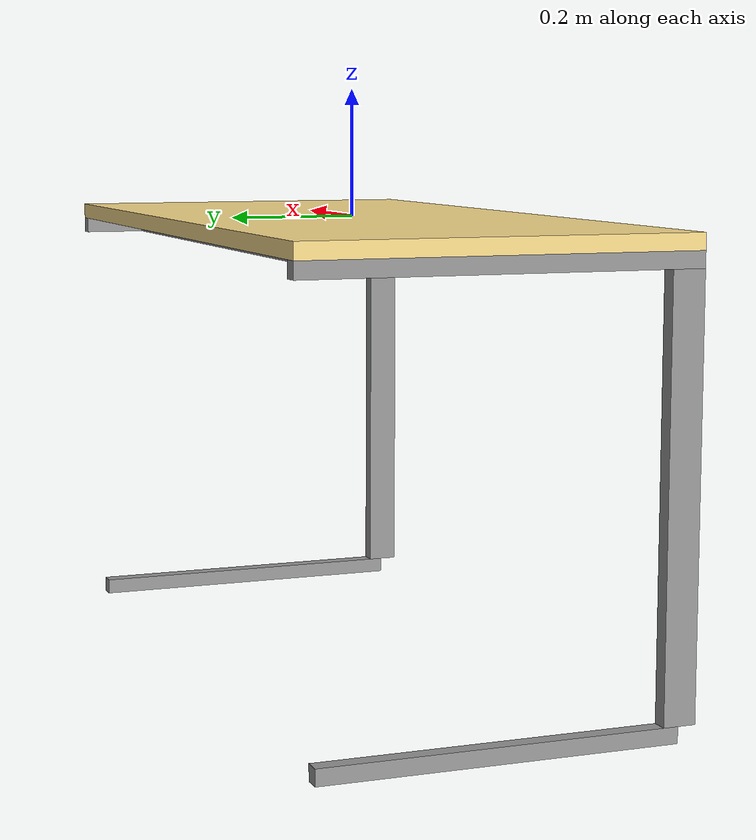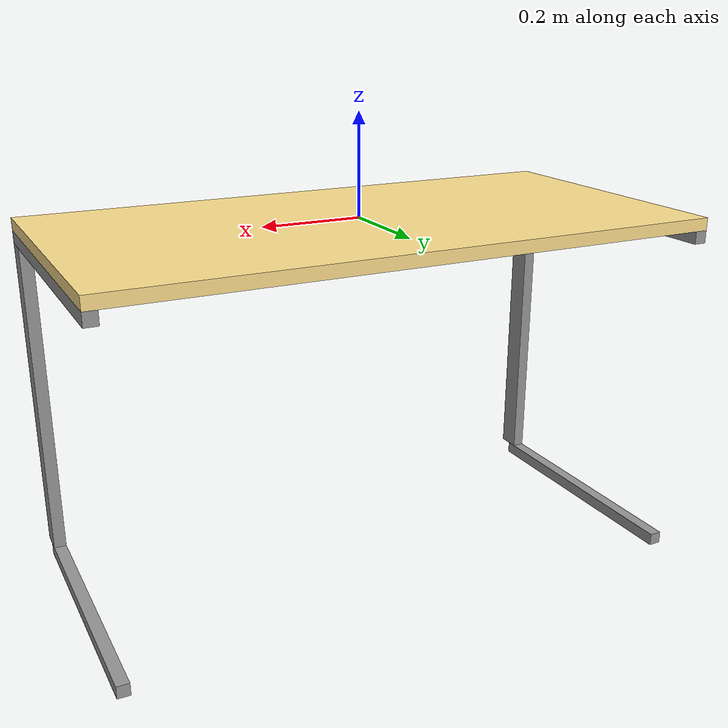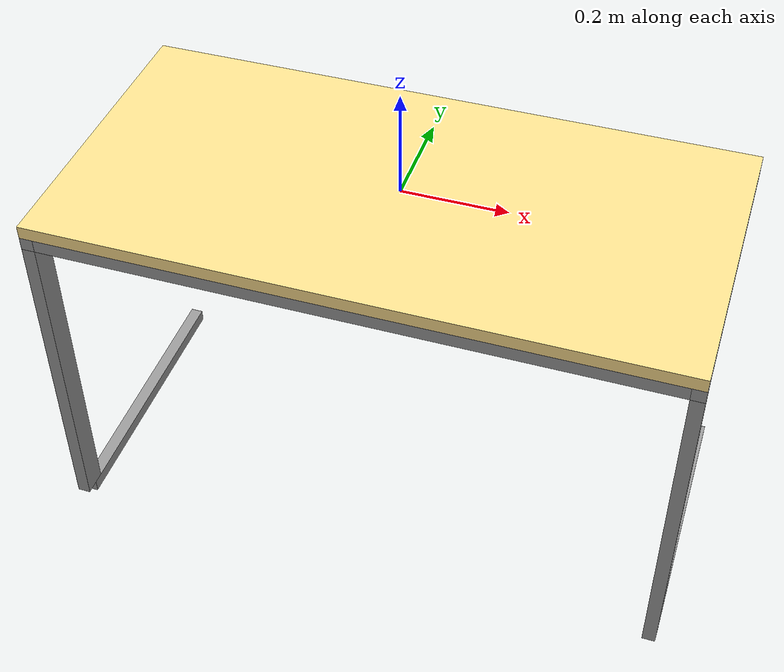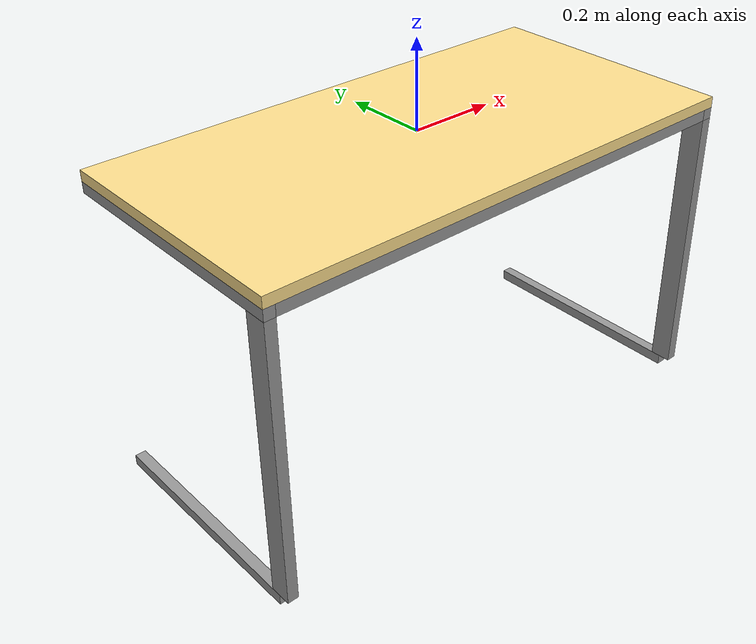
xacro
<?xml version="1.0"?>
<robot name="big_table" xmlns:xacro="http://www.ros.org/wiki/xacro">

<!-- Import all Gazebo-customization elements, including Gazebo colors -->
<xacro:include filename="$(find table_description)/urdf/table.gazebo" />

<!-- Import Rviz colors -->
<xacro:include filename="$(find table_description)/urdf/materials.xacro" />

<xacro:property name="table_top_l"  value="1.2"   />
<xacro:property name="table_top_h"  value="0.6"   />
<xacro:property name="table_top_w"  value="0.025" />

<xacro:property name="table_bot_l"  value="1.15"  />
<xacro:property name="table_bot_h"  value="0.5"   />
<xacro:property name="table_bot_w"  value="0.025" />

<xacro:property name="top_bar_l"  value="0.025"   />
<xacro:property name="top_bar_h"  value="0.6"     />
<xacro:property name="top_bar_w"  value="0.025"   />

<xacro:property name="leg_l"  value="0.025"   />
<xacro:property name="leg_h"  value="0.05"  />
<xacro:property name="leg_w"  value="0.65"   />

<xacro:property name="sup_l"  value="0.025"   />
<xacro:property name="sup_h"  value="0.545"  />
<xacro:property name="sup_w"  value="0.025"   />

<xacro:macro name="box_I" params="m w h d">
    <inertia ixx="${1/12 * m * (d*d  + h * h)}" ixy="0.0" ixz="0.0" iyy="${1/12 * m * (h * h + w * w)}" iyz="0.0" izz="${1/12 * m * (w * w + d * d)}" />
</xacro:macro>

<!-- support -->
<xacro:macro name="sup" params="prefix rx">
	<link name="${prefix}_sup">
      		<visual>
		<origin xyz="0 0 0" rpy="0 0 0"/>
        		<geometry>
	        		<box size="${sup_l} ${sup_h} ${sup_w}"/>
        		</geometry>
 			<material name="Grey"/>
      		</visual>

		<inertial>
			<origin xyz="0 0 0" rpy="0 0 0"/>
			<mass value="1"/>
			<xacro:box_I m="0.25" w="${sup_l}" h="${sup_h}" d="${sup_w}"/>
		</inertial>

		<collision>
			<origin xyz="0 0 0" rpy="0 0 0"/>
			<geometry>
				<box size="${sup_l} ${sup_h} ${sup_w}"/>
			</geometry>
  		</collision>

	</link>
	<joint name="link_${prefix}_sup" type="fixed">
		<origin xyz="${rx*0.5*table_top_l -rx*0.5*top_bar_l} 0 ${-table_top_w-table_bot_w-leg_w-0.5*sup_w}" rpy="0 0 0"/>
		<parent link="table_top"/>
		<child link="${prefix}_sup"/>
	 </joint>
</xacro:macro>

<!-- lefg -->
<xacro:macro name="leg" params="prefix rx">
	<link name="${prefix}_leg">
      		<visual>
		<origin xyz="0 0 0" rpy="0 0 0"/>
        		<geometry>
	        		<box size="${leg_l} ${leg_h} ${leg_w}"/>
        		</geometry>
 			<material name="Grey"/>
      		</visual>

		<inertial>
			<origin xyz="0 0 0" rpy="0 0 0"/>
			<mass value="1"/>
			<xacro:box_I m="0.25" w="${leg_l}" h="${leg_h}" d="${leg_w}"/>
		</inertial>

		<collision>
			<origin xyz="0 0 0" rpy="0 0 0"/>
			<geometry>
				<box size="${leg_l} ${leg_h} ${leg_w}"/>
			</geometry>
  		</collision>

	</link>
	<joint name="link_${prefix}_leg" type="fixed">
		<origin xyz="${rx*0.5*table_top_l -rx*0.5*leg_l} ${-0.5*table_top_h + 0.5* leg_h} ${-0.5*leg_w-table_top_w-table_bot_w}" rpy="0 0 0"/>
		<parent link="table_top"/>
		<child link="${prefix}_leg"/>
	 </joint>
</xacro:macro>

<!-- top bar -->
<xacro:macro name="top_bar" params="prefix rx">
	<link name="${prefix}_top_bar">
      		<visual>
		<origin xyz="0 0 0" rpy="0 0 0"/>
        		<geometry>
	        		<box size="${top_bar_l} ${top_bar_h} ${top_bar_w}"/>
        		</geometry>
 			<material name="Grey"/>
      		</visual>

		<inertial>
			<origin xyz="0 0 0" rpy="0 0 0"/>
			<mass value="1"/>
			<xacro:box_I m="0.25" w="${top_bar_l}" h="${top_bar_h}" d="${top_bar_w}"/>
		</inertial>

		<collision>
			<origin xyz="0 0 0" rpy="0 0 0"/>
			<geometry>
				<box size="${top_bar_l} ${top_bar_h} ${top_bar_w}"/>
			</geometry>
  		</collision>
	</link>

	<joint name="link_${prefix}_top_bar" type="fixed">
		<origin xyz="${rx*0.5*table_top_l -rx*0.5*top_bar_l} 0  ${-0.5*table_top_w-top_bar_w }" rpy="0 0 0"/>
		<parent link="table_top"/>
		<child link="${prefix}_top_bar"/>
	 </joint>

</xacro:macro>

<xacro:macro name="big_table">

<link name="table_top">
	<visual>
		<origin xyz="0 0 ${-table_top_w * 0.5}" rpy="0 0 0"/>
		<geometry>
			<box size="${table_top_l} ${table_top_h} ${table_top_w}"/>
		</geometry>
 		<material name="Wood"/>
        </visual>

	<inertial>
		<origin xyz="0 0 0" rpy="0 0 0"/>
		<mass value="1"/>
		<xacro:box_I m="1.0" w="${table_top_w}" h="${table_top_h}" d="${table_top_l}"/>
	</inertial>

	<collision>
		<origin xyz="0 0 0" rpy="0 0 0"/>
		<geometry>
			<box size="${table_top_l} ${table_top_h} ${table_top_w}"/>
		</geometry>
  	</collision>
</link>

<link name="table_bottom">
	<visual>
		<origin xyz="0 0 ${-table_bot_w * 0.5}" rpy="0 0 0"/>
		<geometry>
			<box size="${table_bot_l} ${table_bot_h} ${table_bot_w}"/>
		</geometry>
 		<material name="Grey"/>
        </visual>

	<inertial>
		<origin xyz="0 0 0" rpy="0 0 0"/>
		<mass value="1"/>
		<xacro:box_I m="1.0" w="${table_bot_w}" h="${table_bot_h}" d="${table_bot_l}"/>
	</inertial>

	<collision>
		<origin xyz="0 0 0" rpy="0 0 0"/>
		<geometry>
			<box size="${table_bot_l} ${table_bot_h} ${table_bot_w}"/>
		</geometry>
  	</collision>
</link>

<joint name="link_table_top_bottom" type="fixed">
	<origin xyz="0 ${-0.5*(table_top_h - table_bot_h)} ${-0.5 * table_top_w - 0.5 * table_bot_w}" rpy="0 0 0"/>
	<parent link="table_top"/>
	<child link="table_bottom"/>
</joint>

<xacro:top_bar prefix="left"   rx="1"/>
<xacro:top_bar prefix="right"  rx="-1"/>

<xacro:leg prefix="left"   rx="1"/>
<xacro:leg prefix="right"  rx="-1"/>

<xacro:sup prefix="left"   rx="1"/>
<xacro:sup prefix="right"  rx="-1"/>

</xacro:macro>

<xacro:big_table/>

</robot>

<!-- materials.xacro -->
<robot>

<material name="red">
   <color rgba="0.8 0.0 0.0 1.0"/>
</material>

<material name="Grey">
   <color rgba="0.6 0.6 0.6 1.0"/>
</material>

<material name="Black">
 	<color rgba="0.0 0.0 0.0 1"/>
</material>

<material name="Blue">
 	<color rgba="0.0 0.0 1.0 1"/>
</material>

 		<material name="Wood">
 			<color rgba="1 0.88 0.56 1"/>
        	</material>

</robot>
